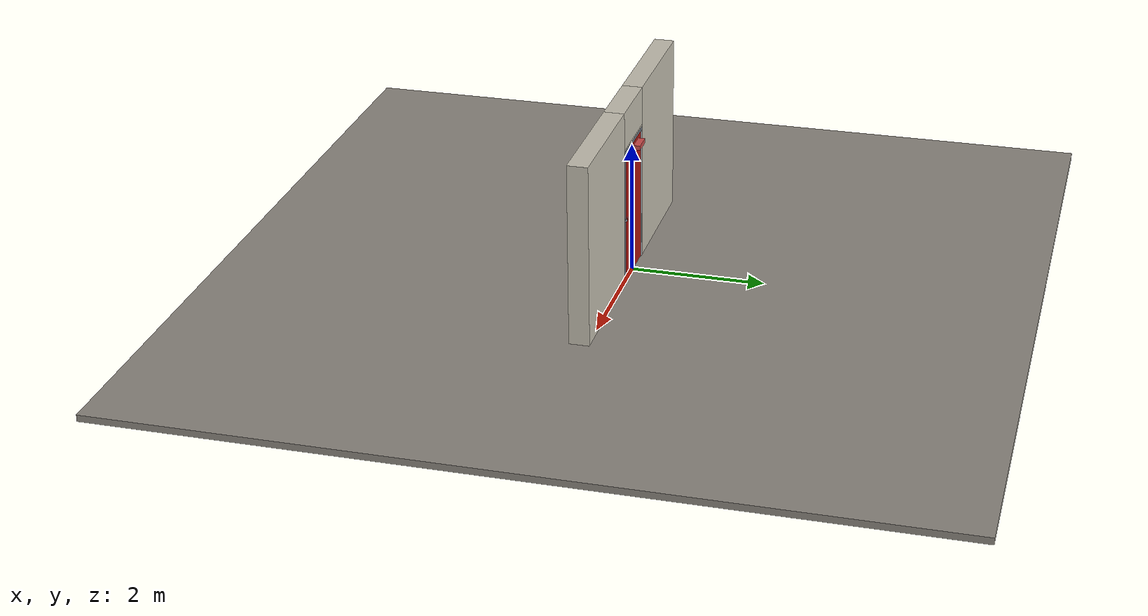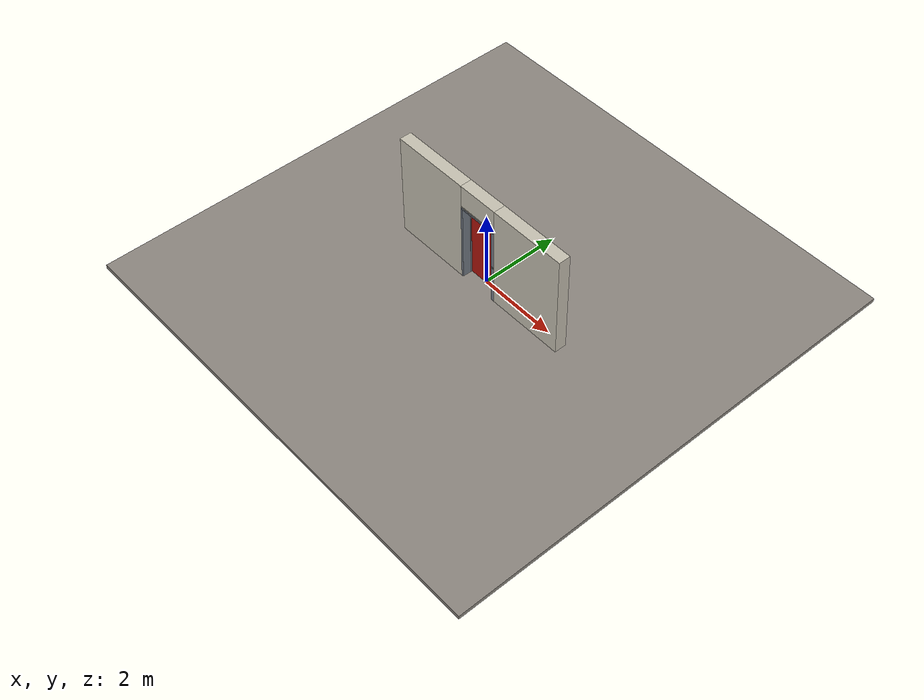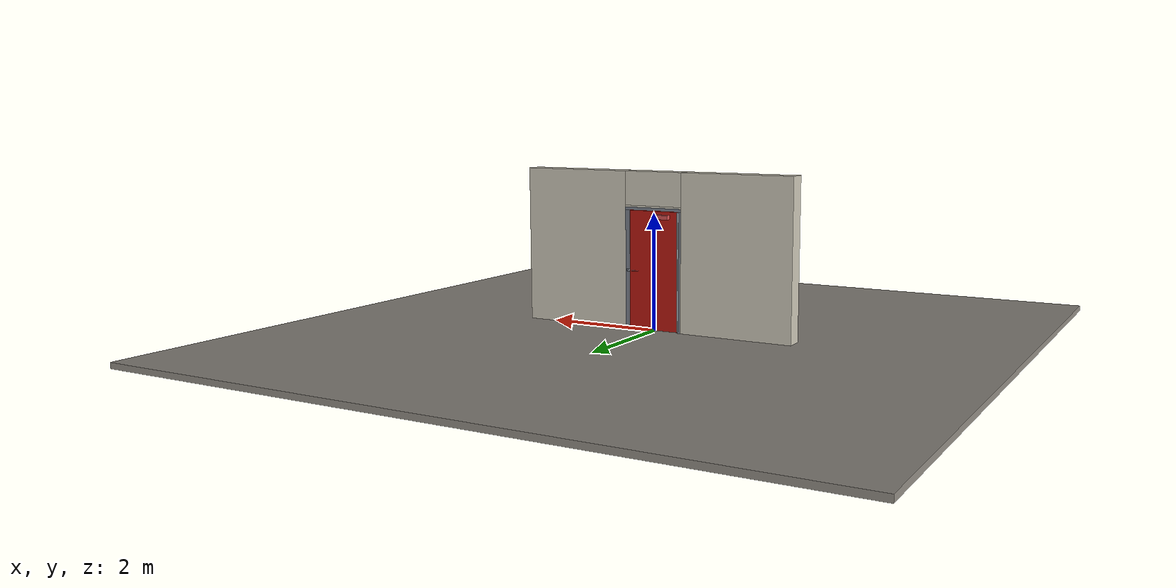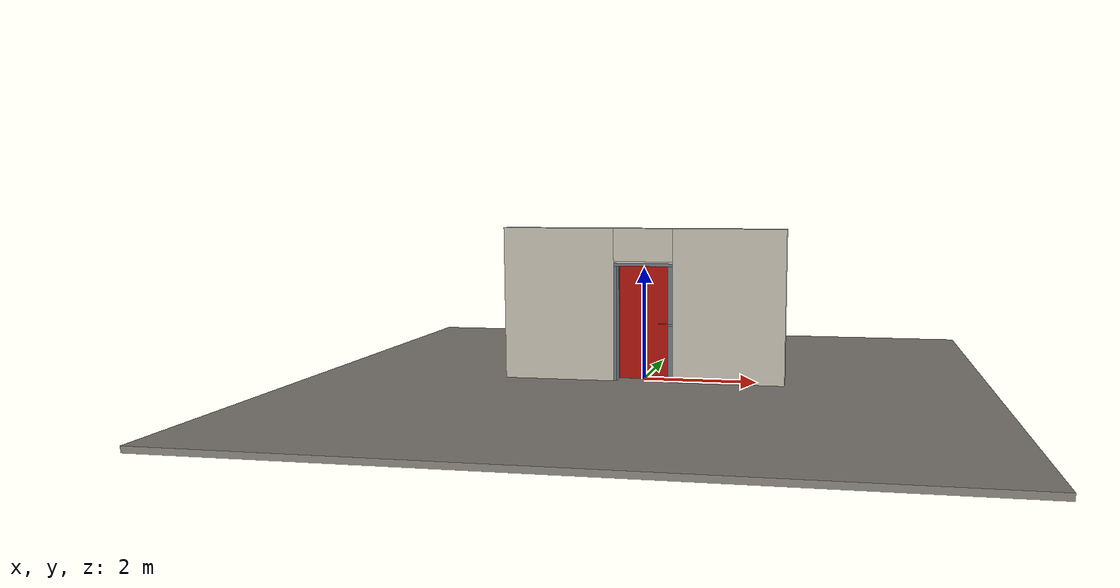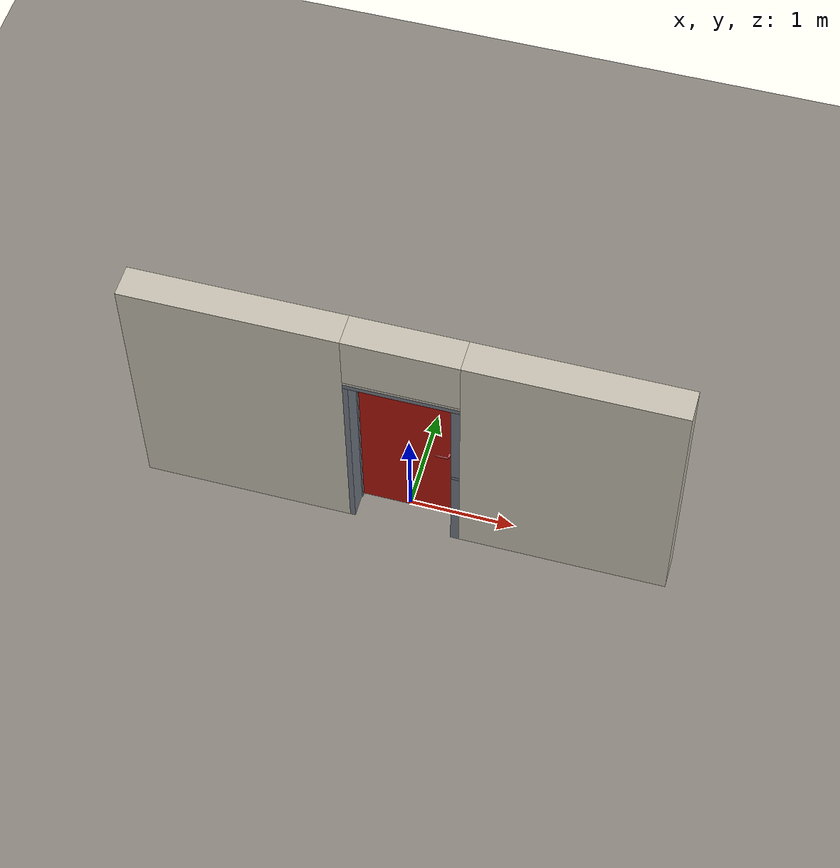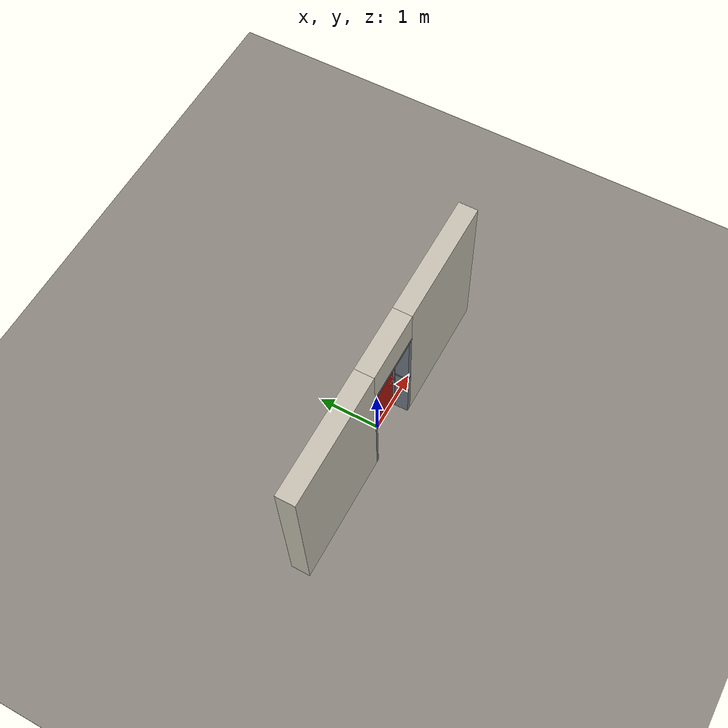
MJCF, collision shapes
<?xml version="1.0" ?>
<mujoco model="db0625_swing_single_simple">
  <compiler angle="radian" meshdir="../../hardware" texturedir="../../textures" autolimits="true" inertiafromgeom="false"/>
  <option timestep="0.002" integrator="implicitfast" cone="elliptic" impratio="10" noslip_iterations="3">
    <flag multiccd="enable"/>
  </option>
  <size memory="16M"/>
  <default>
    <geom condim="4" solref="0.005 1" solimp="0.95 0.99 0.001"/>
    <joint solreflimit="0.005 1" solimplimit="0.95 0.99 0.001"/>
    <tendon solreflimit="0.005 1"/>
    <equality solref="0.002 1"/>
  </default>
  <visual>
    <headlight ambient="0.4 0.4 0.4" diffuse="0.7 0.7 0.7" specular="0.2 0.2 0.2"/>
    <quality shadowsize="4096"/>
    <map znear="0.01" zfar="60"/>
  </visual>
  <asset>
    <mesh name="closer_body_fdc4667657" file="closer_body_fdc4667657.obj"/>
    <mesh name="lever_9f02b544cf" file="lever_9f02b544cf.obj"/>
    <material name="mat_floor" rgba="0.55 0.53 0.5 1" specular="0.2" shininess="0.15" reflectance="0"/>
    <material name="mat_wall" rgba="0.78 0.76 0.7 1" specular="0.2" shininess="0.1" reflectance="0"/>
    <material name="mat_leaf" rgba="0.7 0.08 0.05 1" specular="0.2" shininess="0.64" reflectance="0"/>
    <material name="mat_hinge" rgba="0.65 0.66 0.68 1" specular="0.74" shininess="0.5" reflectance="0.36"/>
    <material name="mat_op_nickel_satin" rgba="0.72 0.7 0.66 1" specular="0.8" shininess="0.65" reflectance="0.4"/>
    <material name="mat_trim" rgba="0.85 0.66 0.3 1" specular="0.8" shininess="0.75" reflectance="0.4"/>
    <material name="mat_bolt" rgba="0.85 0.66 0.3 1" specular="0.8" shininess="0.75" reflectance="0.4"/>
    <material name="mat_frame" rgba="0.45 0.48 0.52 1" specular="0.32" shininess="0.6" reflectance="0.08"/>
    <material name="mat_seal" rgba="0.1 0.1 0.1 1" specular="0.2" shininess="0.1" reflectance="0"/>
    <material name="mat_closer" rgba="0.22 0.17 0.13 1" specular="0.8" shininess="0.6" reflectance="0.4"/>
    <texture name="skybox" type="skybox" builtin="gradient" rgb1="0.6 0.7 0.85" rgb2="0.9 0.92 0.95" width="256" height="256"/>
  </asset>
  <worldbody>
    <light name="sun" pos="1.5 -2.5 4" dir="-0.3 0.5 -0.8" directional="true" diffuse="0.8 0.8 0.8" specular="0.3 0.3 0.3" castshadow="true"/>
    <light name="fill" pos="-1.5 2.5 3" dir="0.3 -0.5 -0.7" directional="true" diffuse="0.35 0.35 0.4" castshadow="false"/>
    <camera name="robot_view" pos="0 -2.663187 1.734312" xyaxes="1 0 0 0 0.26963 0.962964" fovy="52"/>
    <camera name="far_view" pos="0 2.421187 1.734312" xyaxes="-1 0 0 0 -0.26963 0.962964" fovy="52"/>
    <camera name="iso" pos="1.932062 -2.256438 2.141063" xyaxes="0.741536 0.670913 0 -0.242917 0.268487 0.932151" fovy="46"/>
    <camera name="detail_handle" pos="0.4665 -0.877 1.296" xyaxes="0.97561 0.219512 0 -0.070934 0.315262 0.94635" fovy="38"/>
    <geom name="floor" type="box" size="6 6 0.05" pos="0 0 -0.05" material="mat_floor" group="0" contype="1" conaffinity="1" friction="0.8 0.005 0.0001" density="2400"/>
    <geom name="wall_left" type="box" size="0.99475 0.15 1.35" pos="-1.50525 -0.121 1.35" material="mat_wall" group="0" contype="1" conaffinity="1" friction="0.6 0.005 0.0001" density="800"/>
    <geom name="wall_right" type="box" size="0.97975 0.15 1.35" pos="1.52025 -0.121 1.35" material="mat_wall" group="0" contype="1" conaffinity="1" friction="0.6 0.005 0.0001" density="800"/>
    <geom name="wall_header" type="box" size="0.5255 0.15 0.2875" pos="0.015 -0.121 2.4125" material="mat_wall" group="0" contype="1" conaffinity="1" friction="0.6 0.005 0.0001" density="800"/>
    <geom name="jamb_hinge" type="box" size="0.025 0.15 1.0225" pos="-0.4855 -0.121 1.0225" material="mat_frame" group="0" contype="1" conaffinity="1" friction="0.6 0.005 0.0001" density="300"/>
    <geom name="strike_1016_wall_n" type="box" size="0.04 0.13075 0.0183" pos="0.5005 -0.14025 1.016" material="mat_frame" group="0" contype="1" conaffinity="1" friction="0.6 0.005 0.0001" density="300"/>
    <geom name="strike_1016_wall_p" type="box" size="0.04 0.008 0.0183" pos="0.5005 0.0175 1.016" material="mat_frame" group="0" contype="1" conaffinity="1" friction="0.6 0.005 0.0001" density="300"/>
    <geom name="strike_1016_ramp" type="box" size="0.04 0.018028 0.0183" pos="0.503782 0.018312 1.016" quat="0.957092 0 0 -0.289784" material="mat_frame" group="0" contype="1" conaffinity="1" friction="0.12 0.005 0.0001" density="300"/>
    <geom name="strike_1016_back" type="box" size="0.0285 0.0095 0.0183" pos="0.512 0 1.016" material="mat_frame" group="0" contype="1" conaffinity="1" friction="0.6 0.005 0.0001" density="300"/>
    <geom name="jamb_strike_0" type="box" size="0.04 0.15 0.49885" pos="0.5005 -0.121 0.49885" material="mat_frame" group="0" contype="1" conaffinity="1" friction="0.6 0.005 0.0001" density="300"/>
    <geom name="jamb_strike_1" type="box" size="0.04 0.15 0.50535" pos="0.5005 -0.121 1.53965" material="mat_frame" group="0" contype="1" conaffinity="1" friction="0.6 0.005 0.0001" density="300"/>
    <geom name="jamb_head" type="box" size="0.5255 0.15 0.025" pos="0.015 -0.121 2.07" material="mat_frame" group="0" contype="1" conaffinity="1" friction="0.6 0.005 0.0001" density="300"/>
    <geom name="head_stud" type="box" size="0.5255 0.15 0.015" pos="0.015 -0.121 2.11" material="mat_wall" group="0" contype="1" conaffinity="1" friction="0.6 0.005 0.0001" density="500"/>
    <geom name="stop_hinge" type="box" size="0.0055 0.016 1.0225" pos="-0.455 -0.0385 1.0225" material="mat_frame" group="0" contype="1" conaffinity="1" friction="0.6 0.005 0.0001" density="300"/>
    <geom name="stop_strike" type="box" size="0.0055 0.016 1.0225" pos="0.455 -0.0385 1.0225" material="mat_frame" group="0" contype="1" conaffinity="1" friction="0.6 0.005 0.0001" density="300"/>
    <geom name="stop_head" type="box" size="0.4605 0.016 0.0055" pos="0 -0.0385 2.0395" material="mat_frame" group="0" contype="1" conaffinity="1" friction="0.6 0.005 0.0001" density="300"/>
    <geom name="seal_hinge" type="box" size="0.004 0.0025 1.0225" pos="-0.4575 -0.0245 1.0225" material="mat_seal" group="1" contype="0" conaffinity="0" density="1100"/>
    <geom name="seal_strike" type="box" size="0.004 0.0025 1.0225" pos="0.4575 -0.0245 1.0225" material="mat_seal" group="1" contype="0" conaffinity="0" density="1100"/>
    <geom name="seal_head" type="box" size="0.4405 0.0025 0.008" pos="0 -0.0245 2.033" material="mat_seal" group="1" contype="0" conaffinity="0" density="1100"/>
    <site name="approach_point" pos="0 -1.5 0" quat="1 0 0 0" size="0.05" rgba="0.2 0.9 0.2 0.5" group="4"/>
    <site name="goal_point" pos="0 1.5 0" quat="1 0 0 0" size="0.05" rgba="0.2 0.9 0.2 0.5" group="4"/>
    <site name="door_plane_center" pos="0 0 1.0225" quat="1 0 0 0" size="0.02" rgba="0.2 0.9 0.2 0.5" group="4"/>
    <body name="leaf" pos="-0.4605 0 0">
      <inertial pos="0.393292 0.020242 1.26482" mass="45.103323" quat="-0.469929 0.497879 0.515935 0.514873" diaginertia="2.837850501 19.041176711 21.798605604"/>
      <joint name="leaf_hinge" type="hinge" axis="0 0 1" pos="0.003 0.029 0" limited="true" range="0 1.745329" solreflimit="0.02 1" damping="12.25611" frictionloss="4.505958" stiffness="13.171663" springref="-1.46223" armature="0.02"/>
      <geom name="leaf_slab" type="box" size="0.457 0.022 1.016" pos="0.46 0 1.025" material="mat_leaf" group="0" contype="1" conaffinity="1" friction="0.4 0.005 0.0001" density="1"/>
      <geom name="hinge_continuous" type="cylinder" size="0.0136 1.006" pos="0.003 0.029 1.025" material="mat_hinge" group="1" contype="0" conaffinity="0" density="2700"/>
      <geom name="leaf_latch_bolt_faceplate" type="box" size="0.0006 0.014 0.0283" pos="0.9164 0 1.016" material="mat_bolt" group="1" contype="0" conaffinity="0" density="8500"/>
      <geom name="closer_body" type="mesh" mesh="closer_body_fdc4667657" pos="0.3 0.022 1.952" quat="-0.707107 0.707107 0 0" material="mat_closer" group="1" contype="0" conaffinity="0" density="2000"/>
      <geom name="closer_body_col" type="box" size="0.145 0.05 0.035" pos="0.3 0.072 1.952" material="mat_closer" group="3" contype="1" conaffinity="1" rgba="0.8 0.3 0.3 0.25" friction="0.6 0.005 0.0001" density="2000"/>
      <site name="leaf_edge_mid" pos="0.917 0 1.016" quat="1 0 0 0" size="0.02" rgba="0.2 0.9 0.2 0.5" group="4"/>
      <body name="leaf_handle" pos="0.847 0 1.016">
        <inertial pos="-0.030188 0 0" mass="0.924918" quat="0.707107 0 0 -0.707107" diaginertia="0.001725188 0.003587995 0.005135939"/>
        <joint name="leaf_handle_hinge" type="hinge" axis="0 -1 0" limited="true" range="0 0.96" damping="0.245624" frictionloss="0.048" stiffness="1.2" springref="-0.458333" armature="0.01"/>
        <geom name="leaf_handle_lever_n" type="mesh" mesh="lever_9f02b544cf" pos="0 -0.022 0" quat="0.707107 0.707107 0 0" material="mat_op_nickel_satin" group="1" contype="0" conaffinity="0" density="3000"/>
        <geom name="leaf_handle_lever_col_n" type="capsule" size="0.0095 0.053" pos="-0.0625 -0.077 0" quat="0.707107 0 -0.707107 0" material="mat_op_nickel_satin" group="3" contype="1" conaffinity="1" rgba="0.8 0.3 0.3 0.25" friction="0.7 0.01 0.0001" density="3000"/>
        <geom name="leaf_handle_hub_col_n" type="cylinder" size="0.012 0.022" pos="0 -0.052 0" quat="0.707107 -0.707107 0 0" material="mat_op_nickel_satin" group="3" contype="1" conaffinity="1" rgba="0.8 0.3 0.3 0.25" friction="0.6 0.005 0.0001" density="3000"/>
        <geom name="leaf_handle_lever_p" type="mesh" mesh="lever_9f02b544cf" pos="0 0.022 0" quat="-0.707107 0.707107 0 0" material="mat_op_nickel_satin" group="1" contype="0" conaffinity="0" density="3000"/>
        <geom name="leaf_handle_lever_col_p" type="capsule" size="0.0095 0.053" pos="-0.0625 0.077 0" quat="0.707107 0 -0.707107 0" material="mat_op_nickel_satin" group="3" contype="1" conaffinity="1" rgba="0.8 0.3 0.3 0.25" friction="0.7 0.01 0.0001" density="3000"/>
        <geom name="leaf_handle_hub_col_p" type="cylinder" size="0.012 0.022" pos="0 0.052 0" quat="0.707107 -0.707107 0 0" material="mat_op_nickel_satin" group="3" contype="1" conaffinity="1" rgba="0.8 0.3 0.3 0.25" friction="0.6 0.005 0.0001" density="3000"/>
        <site name="leaf_handle_grip_n" pos="-0.1 -0.077 0" quat="1 0 0 0" size="0.012" rgba="0.2 0.9 0.2 0.5" group="4"/>
        <site name="leaf_handle_grip_p" pos="-0.1 0.077 0" quat="1 0 0 0" size="0.012" rgba="0.2 0.9 0.2 0.5" group="4"/>
      </body>
      <body name="leaf_latch_bolt" pos="0.917 0 1.016">
        <inertial pos="-0.0055 0 0" mass="0.074627" quat="0.92388 -0.382683 0 0" diaginertia="0.000002271 0.000013255 0.000013255"/>
        <joint name="leaf_latch_bolt_slide" type="slide" axis="-1 0 0" limited="true" range="0 0.019" damping="2" frictionloss="0.3" stiffness="600" springref="-0.01" armature="0.1"/>
        <geom name="leaf_latch_bolt_capsule" type="capsule" size="0.008 0.0165" pos="-0.0055 0 0" quat="0.707107 0 0.707107 0" material="mat_bolt" group="0" contype="1" conaffinity="1" friction="0.2 0.005 0.0001" density="8500"/>
      </body>
    </body>
  </worldbody>
  <tendon>
    <fixed name="leaf_latch_bolt_coupling" limited="true" range="0 10">
      <joint joint="leaf_latch_bolt_slide" coef="1"/>
      <joint joint="leaf_handle_hinge" coef="-0.020879"/>
    </fixed>
  </tendon>
  <sensor>
    <jointpos name="leaf_hinge_pos" joint="leaf_hinge"/>
    <jointvel name="leaf_hinge_vel" joint="leaf_hinge"/>
    <jointpos name="leaf_handle_hinge_pos" joint="leaf_handle_hinge"/>
    <jointvel name="leaf_handle_hinge_vel" joint="leaf_handle_hinge"/>
    <jointpos name="leaf_latch_bolt_slide_pos" joint="leaf_latch_bolt_slide"/>
    <jointvel name="leaf_latch_bolt_slide_vel" joint="leaf_latch_bolt_slide"/>
  </sensor>
</mujoco>
